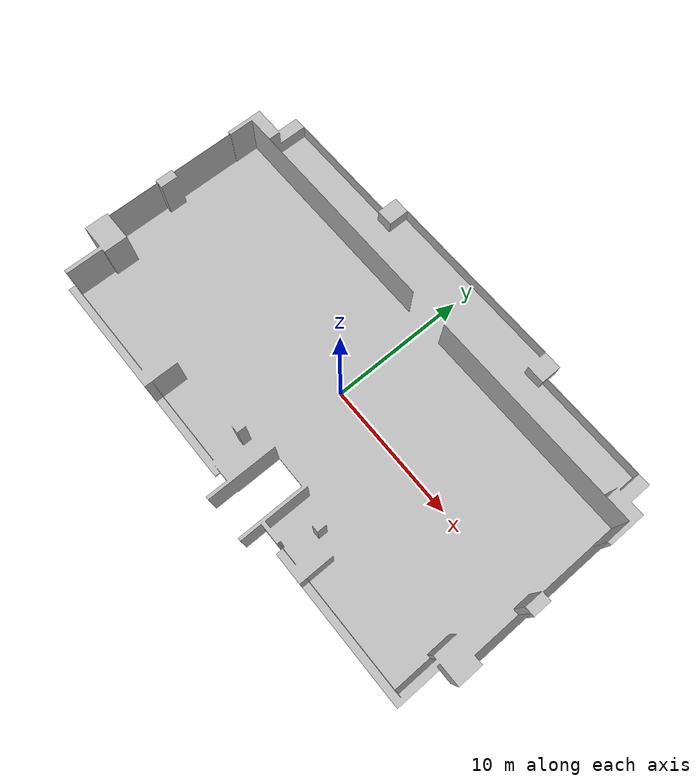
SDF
<?xml version="1.0" ?>
<sdf version="1.9">

  <model name="villa_3F">

    <static>true</static>

    <link name="villa_3F_link">

      <visual name="villa_3F_visual">
        <geometry>
          <mesh>
            <uri>meshes/villa_3F.obj</uri>
          </mesh>
        </geometry>
      </visual>

      <collision name="villa_3F_collision">
        <geometry>
          <mesh>
            <uri>meshes/villa_3F.obj</uri>
          </mesh>
        </geometry>
      </collision>

    </link>

  </model>

</sdf>
